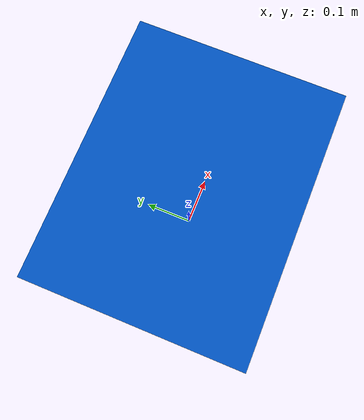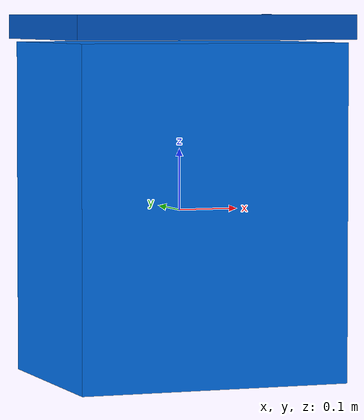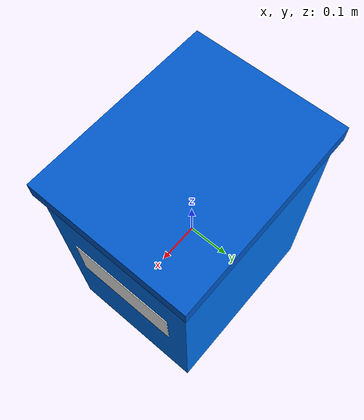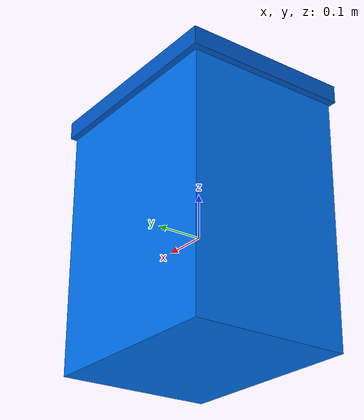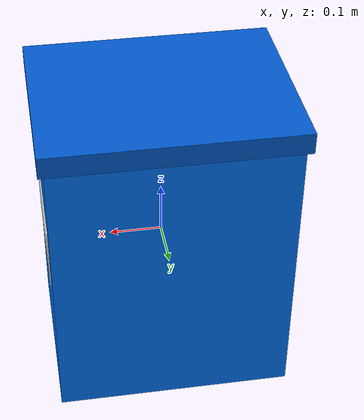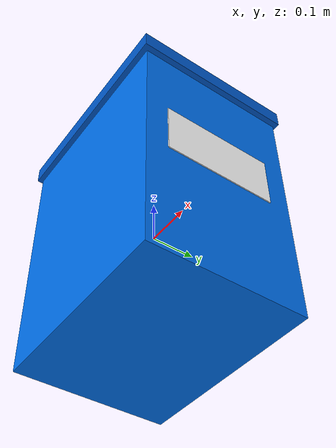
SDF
<?xml version="1.0"?>
<sdf version="1.8">
  <model name="plastic_bin">
    <static>true</static>
    <link name="link">
      <!-- Bin body -->
      <collision name="body_collision">
        <geometry>
          <box><size>0.45 0.35 0.55</size></box>
        </geometry>
      </collision>
      <visual name="body_visual">
        <geometry>
          <box><size>0.45 0.35 0.55</size></box>
        </geometry>
        <material>
          <ambient>0.0 0.4 0.9 1</ambient>
          <diffuse>0.0 0.45 0.95 1</diffuse>
          <specular>0.1 0.1 0.1 1</specular>
        </material>
      </visual>
      <!-- Lid (slightly wider, sits on top) -->
      <collision name="lid_collision">
        <pose>0 0 0.3 0 0 0</pose>
        <geometry>
          <box><size>0.47 0.37 0.04</size></box>
        </geometry>
      </collision>
      <visual name="lid_visual">
        <pose>0 0 0.3 0 0 0</pose>
        <geometry>
          <box><size>0.47 0.37 0.04</size></box>
        </geometry>
        <material>
          <ambient>0.0 0.3 0.75 1</ambient>
          <diffuse>0.0 0.35 0.8 1</diffuse>
          <specular>0.1 0.1 0.1 1</specular>
        </material>
      </visual>
      <!-- Label strip -->
      <visual name="label_visual">
        <pose>0.226 0 0.05 0 0 0</pose>
        <geometry>
          <box><size>0.002 0.25 0.12</size></box>
        </geometry>
        <material>
          <ambient>1.0 1.0 1.0 1</ambient>
          <diffuse>1.0 1.0 1.0 1</diffuse>
        </material>
      </visual>
      <inertial>
        <mass>3.5</mass>
        <inertia>
          <ixx>0.18</ixx><ixy>0</ixy><ixz>0</ixz>
          <iyy>0.22</iyy><iyz>0</iyz>
          <izz>0.12</izz>
        </inertia>
      </inertial>
    </link>
  </model>
</sdf>
